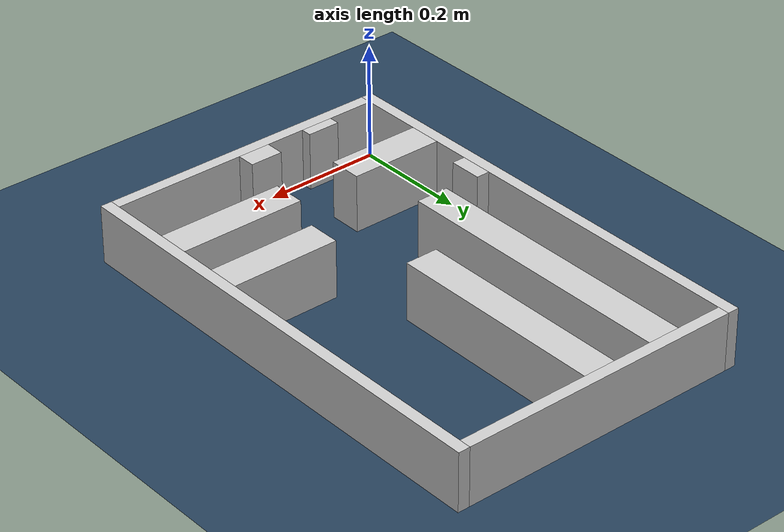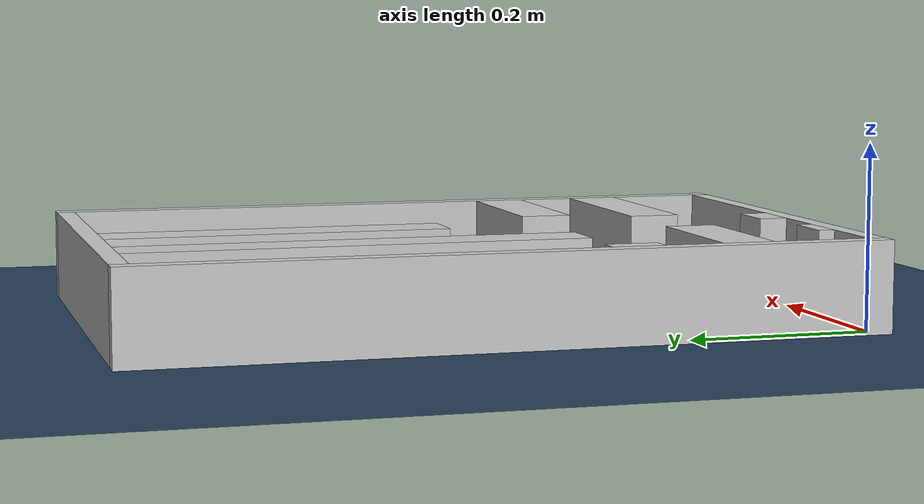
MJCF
<?xml version="1.0" ?>
<mujoco model="generated_real_template">
  <compiler angle="degree"/>
  <option timestep="0.002" integrator="implicitfast" iterations="100" cone="elliptic"/>
  <default>
    <geom density="1"/>
  </default>
  <asset>
    <texture builtin="gradient" height="3072" rgb1="0.3 0.5 0.7" rgb2="0 0 0" type="skybox" width="512"/>
    <texture builtin="checker" height="300" mark="edge" markrgb="0.8 0.8 0.8" name="groundplane" rgb1="0.2 0.3 0.4" rgb2="0.1 0.2 0.3" type="2d" width="300"/>
    <material name="groundplane" reflectance="0.2" texrepeat="5 5" texture="groundplane" texuniform="true"/>
  </asset>
  <worldbody>
    <light dir="0 0 -1" directional="true" pos="0 0 1.5"/>
    <geom name="floor" type="plane" condim="4" friction="0.5 0.005 0.001" material="groundplane" size="0 0 0.05"/>
    <body name="walls">
      <geom name="wall_boundary_left" type="box" condim="4" friction="1.0 0.005 0.0001" rgba="0.8 0.8 0.8 1" pos="-0.010000 0.387500 0.050000" euler="0 0 0.000000" size="0.010000 0.407500 0.050000"/>
      <geom name="wall_boundary_right" type="box" condim="4" friction="1.0 0.005 0.0001" rgba="0.8 0.8 0.8 1" pos="0.500000 0.387500 0.050000" euler="0 0 0.000000" size="0.010000 0.407500 0.050000"/>
      <geom name="wall_boundary_bottom" type="box" condim="4" friction="1.0 0.005 0.0001" rgba="0.8 0.8 0.8 1" pos="0.245000 -0.010000 0.050000" euler="0 0 0.000000" size="0.245000 0.010000 0.050000"/>
      <geom name="wall_boundary_top" type="box" condim="4" friction="1.0 0.005 0.0001" rgba="0.8 0.8 0.8 1" pos="0.245000 0.785000 0.050000" euler="0 0 0.000000" size="0.245000 0.010000 0.050000"/>
      <geom name="wall_inner_1_1" type="box" condim="4" friction="1.0 0.005 0.0001" rgba="0.8 0.8 0.8 1" pos="0.233916 0.016120 0.050000" euler="0 0 90.000000" size="0.016120 0.028500 0.050000"/>
      <geom name="wall_inner_1_2" type="box" condim="4" friction="1.0 0.005 0.0001" rgba="0.8 0.8 0.8 1" pos="0.233916 0.586679 0.050000" euler="0 0 90.000000" size="0.188321 0.028500 0.050000"/>
      <geom name="wall_inner_2_1" type="box" condim="4" friction="1.0 0.005 0.0001" rgba="0.8 0.8 0.8 1" pos="0.109237 0.009106 0.050000" euler="0 0 90.000000" size="0.009106 0.028500 0.050000"/>
      <geom name="wall_inner_2_2" type="box" condim="4" friction="1.0 0.005 0.0001" rgba="0.8 0.8 0.8 1" pos="0.109237 0.526783 0.050000" euler="0 0 90.000000" size="0.248217 0.028500 0.050000"/>
      <geom name="wall_inner_3_1" type="box" condim="4" friction="1.0 0.005 0.0001" rgba="0.8 0.8 0.8 1" pos="0.081313 0.135002 0.050000" euler="0 0 0.000000" size="0.081313 0.028500 0.050000"/>
      <geom name="wall_inner_3_2" type="box" condim="4" friction="1.0 0.005 0.0001" rgba="0.8 0.8 0.8 1" pos="0.380843 0.135002 0.050000" euler="0 0 0.000000" size="0.109157 0.028500 0.050000"/>
      <geom name="wall_inner_4_1" type="box" condim="4" friction="1.0 0.005 0.0001" rgba="0.8 0.8 0.8 1" pos="0.011747 0.256332 0.050000" euler="0 0 0.000000" size="0.011747 0.028500 0.050000"/>
      <geom name="wall_inner_4_2" type="box" condim="4" friction="1.0 0.005 0.0001" rgba="0.8 0.8 0.8 1" pos="0.396174 0.256332 0.050000" euler="0 0 0.000000" size="0.093826 0.028500 0.050000"/>
    </body>
  </worldbody>
</mujoco>
